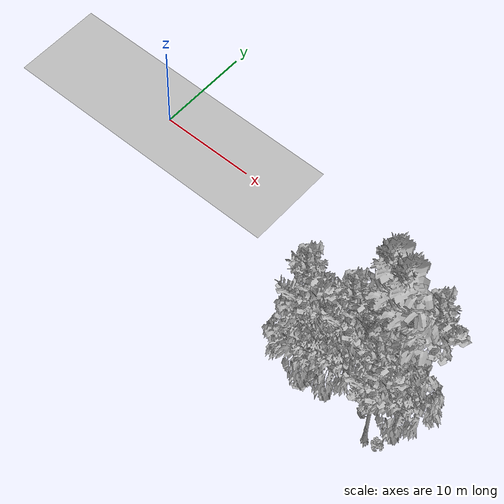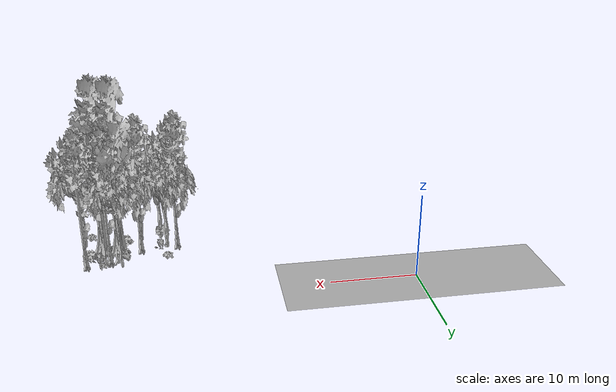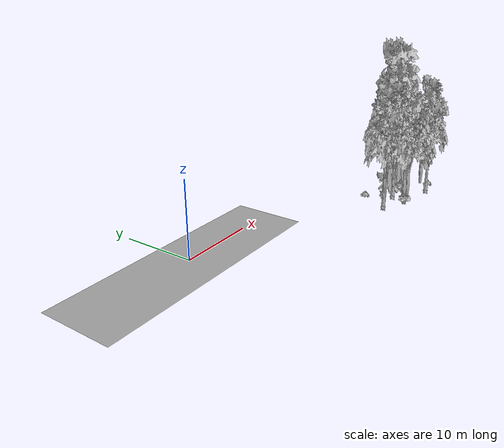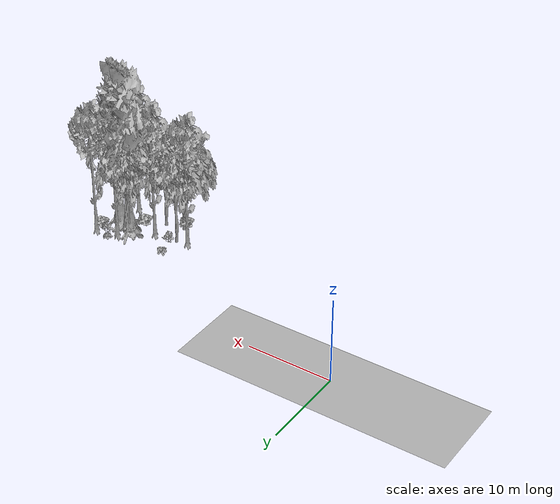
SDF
<sdf version="1.7">
 <world name="default">
  <model name="ground_plane">
   <static>1</static>
   <link name="link">
    <collision name="collision">
     <geometry><plane><normal>0 0 1</normal><size>100 100</size></plane></geometry>
     <surface><contact><ode><min_depth>0.01</min_depth><max_vel>0</max_vel></ode></contact></surface>
    </collision>
    <visual name="grass">
     <cast_shadows>0</cast_shadows>
     <geometry>
      <mesh>
       <scale>0.5814285714285714 0.18142857142857144 0.1</scale>
       <uri>file://grass_plane/meshes/grass_plane.dae</uri>
      </mesh>
     </geometry>
    </visual>
   </link>
  </model>
  <model name="Tree 49">
   <static>1</static>
   <pose>33.44300823481328 -9.500627244571358 0 1.57079 -0 0</pose>
   <link name="link">
    <collision name="collision">
     <geometry><mesh><scale>3.5 5 3.5</scale><uri>model://tree_2/meshes/tree_2.obj</uri></mesh></geometry>
    </collision>
    <visual name="visual">
     <geometry><mesh><scale>3.5 5 3.5</scale><uri>model://tree_2/meshes/tree_2.obj</uri></mesh></geometry>
    </visual>
   </link>
  </model>
  <model name="Tree 52">
   <static>1</static>
   <pose>28.01484143926163 -11.492678406314141 0 1.57079 -0 0</pose>
   <link name="link">
    <collision name="collision">
     <geometry><mesh><scale>3.5 5 3.5</scale><uri>model://tree_2/meshes/tree_2.obj</uri></mesh></geometry>
    </collision>
    <visual name="visual">
     <geometry><mesh><scale>3.5 5 3.5</scale><uri>model://tree_2/meshes/tree_2.obj</uri></mesh></geometry>
    </visual>
   </link>
  </model>
  <model name="Tree 121">
   <static>1</static>
   <pose>33.54353267230708 -9.74247264638067 0 1.57079 -0 0</pose>
   <link name="link">
    <collision name="collision">
     <geometry><mesh><scale>3.5 5 3.5</scale><uri>model://tree_4/meshes/tree_4.obj</uri></mesh></geometry>
    </collision>
    <visual name="visual">
     <geometry><mesh><scale>3.5 5 3.5</scale><uri>model://tree_4/meshes/tree_4.obj</uri></mesh></geometry>
    </visual>
   </link>
  </model>
  <model name="Tree 154">
   <static>1</static>
   <pose>34.7339557698474 -8.773467073257487 0 1.57079 -0 0</pose>
   <link name="link">
    <collision name="collision">
     <geometry><mesh><scale>3.5 5 3.5</scale><uri>model://tree_9/meshes/tree_9.obj</uri></mesh></geometry>
    </collision>
    <visual name="visual">
     <geometry><mesh><scale>3.5 5 3.5</scale><uri>model://tree_9/meshes/tree_9.obj</uri></mesh></geometry>
    </visual>
   </link>
  </model>
  <model name="Tree 222">
   <static>1</static>
   <pose>36.14679054850107 -14.603525658572384 0 1.57079 -0 0</pose>
   <link name="link">
    <collision name="collision">
     <geometry><mesh><scale>3.5 5 3.5</scale><uri>model://tree_9/meshes/tree_9.obj</uri></mesh></geometry>
    </collision>
    <visual name="visual">
     <geometry><mesh><scale>3.5 5 3.5</scale><uri>model://tree_9/meshes/tree_9.obj</uri></mesh></geometry>
    </visual>
   </link>
  </model>
  <model name="Tree 291">
   <static>1</static>
   <pose>31.239416366705143 -11.38739483646315 0 1.57079 -0 0</pose>
   <link name="link">
    <collision name="collision">
     <geometry><mesh><scale>3.5 5 3.5</scale><uri>model://tree_9/meshes/tree_9.obj</uri></mesh></geometry>
    </collision>
    <visual name="visual">
     <geometry><mesh><scale>3.5 5 3.5</scale><uri>model://tree_9/meshes/tree_9.obj</uri></mesh></geometry>
    </visual>
   </link>
  </model>
  <model name="Tree 304">
   <static>1</static>
   <pose>31.150174864312433 -13.627686870271742 0 1.57079 -0 0</pose>
   <link name="link">
    <collision name="collision">
     <geometry><mesh><scale>3.5 5 3.5</scale><uri>model://tree_2/meshes/tree_2.obj</uri></mesh></geometry>
    </collision>
    <visual name="visual">
     <geometry><mesh><scale>3.5 5 3.5</scale><uri>model://tree_2/meshes/tree_2.obj</uri></mesh></geometry>
    </visual>
   </link>
  </model>
  <model name="Tree 308">
   <static>1</static>
   <pose>37.46984126785338 -8.265661914326618 0 1.57079 -0 0</pose>
   <link name="link">
    <collision name="collision">
     <geometry><mesh><scale>3.5 5 3.5</scale><uri>model://tree_9/meshes/tree_9.obj</uri></mesh></geometry>
    </collision>
    <visual name="visual">
     <geometry><mesh><scale>3.5 5 3.5</scale><uri>model://tree_9/meshes/tree_9.obj</uri></mesh></geometry>
    </visual>
   </link>
  </model>
  <model name="Tree 316">
   <static>1</static>
   <pose>35.45920918032074 -10.418701770232861 0 1.57079 -0 0</pose>
   <link name="link">
    <collision name="collision">
     <geometry><mesh><scale>3.5 5 3.5</scale><uri>model://tree_4/meshes/tree_4.obj</uri></mesh></geometry>
    </collision>
    <visual name="visual">
     <geometry><mesh><scale>3.5 5 3.5</scale><uri>model://tree_4/meshes/tree_4.obj</uri></mesh></geometry>
    </visual>
   </link>
  </model>
  <model name="Tree 331">
   <static>1</static>
   <pose>37.86193998172811 -13.014566472799341 0 1.57079 -0 0</pose>
   <link name="link">
    <collision name="collision">
     <geometry><mesh><scale>3.5 5 3.5</scale><uri>model://tree_2/meshes/tree_2.obj</uri></mesh></geometry>
    </collision>
    <visual name="visual">
     <geometry><mesh><scale>3.5 5 3.5</scale><uri>model://tree_2/meshes/tree_2.obj</uri></mesh></geometry>
    </visual>
   </link>
  </model>
  <model name="Tree 443">
   <static>1</static>
   <pose>26.88447209533099 -11.897517149359947 0 1.57079 -0 0</pose>
   <link name="link">
    <collision name="collision">
     <geometry><mesh><scale>3.5 5 3.5</scale><uri>model://tree_9/meshes/tree_9.obj</uri></mesh></geometry>
    </collision>
    <visual name="visual">
     <geometry><mesh><scale>3.5 5 3.5</scale><uri>model://tree_9/meshes/tree_9.obj</uri></mesh></geometry>
    </visual>
   </link>
  </model>
  <model name="Tree 449">
   <static>1</static>
   <pose>28.815141744982128 -14.041929002978321 0 1.57079 -0 0</pose>
   <link name="link">
    <collision name="collision">
     <geometry><mesh><scale>3.5 5 3.5</scale><uri>model://tree_2/meshes/tree_2.obj</uri></mesh></geometry>
    </collision>
    <visual name="visual">
     <geometry><mesh><scale>3.5 5 3.5</scale><uri>model://tree_2/meshes/tree_2.obj</uri></mesh></geometry>
    </visual>
   </link>
  </model>
  <model name="Bush 36">
   <static>1</static>
   <pose>37.01194371645563 -8.880592773637712 0 1.57079 -0 0</pose>
   <link name="link">
    <collision name="collision">
     <geometry><mesh><scale>2 2 2</scale><uri>model://bush_1/meshes/bush_1.obj</uri></mesh></geometry>
     <surface><contact><collide_without_contact>false</collide_without_contact></contact></surface>
    </collision>
    <visual name="visual">
     <geometry><mesh><scale>2 2 2</scale><uri>model://bush_1/meshes/bush_1.obj</uri></mesh></geometry>
    </visual>
   </link>
  </model>
  <model name="Bush 61">
   <static>1</static>
   <pose>28.060554077151252 -8.44310425726506 0 1.57079 -0 0</pose>
   <link name="link">
    <collision name="collision">
     <geometry><mesh><scale>2 2 2</scale><uri>model://bush_3/meshes/bush_3.obj</uri></mesh></geometry>
     <surface><contact><collide_without_contact>false</collide_without_contact></contact></surface>
    </collision>
    <visual name="visual">
     <geometry><mesh><scale>2 2 2</scale><uri>model://bush_3/meshes/bush_3.obj</uri></mesh></geometry>
    </visual>
   </link>
  </model>
  <model name="Bush 115">
   <static>1</static>
   <pose>35.993275368631345 -8.591051388665063 0 1.57079 -0 0</pose>
   <link name="link">
    <collision name="collision">
     <geometry><mesh><scale>2 2 2</scale><uri>model://bush_4/meshes/bush_4.obj</uri></mesh></geometry>
     <surface><contact><collide_without_contact>false</collide_without_contact></contact></surface>
    </collision>
    <visual name="visual">
     <geometry><mesh><scale>2 2 2</scale><uri>model://bush_4/meshes/bush_4.obj</uri></mesh></geometry>
    </visual>
   </link>
  </model>
  <model name="Bush 165">
   <static>1</static>
   <pose>34.45036655638222 -11.97682538208261 0 1.57079 -0 0</pose>
   <link name="link">
    <collision name="collision">
     <geometry><mesh><scale>2 2 2</scale><uri>model://bush_2/meshes/bush_2.obj</uri></mesh></geometry>
     <surface><contact><collide_without_contact>false</collide_without_contact></contact></surface>
    </collision>
    <visual name="visual">
     <geometry><mesh><scale>2 2 2</scale><uri>model://bush_2/meshes/bush_2.obj</uri></mesh></geometry>
    </visual>
   </link>
  </model>
  <model name="Bush 201">
   <static>1</static>
   <pose>28.806505026976254 -10.91462805446821 0 1.57079 -0 0</pose>
   <link name="link">
    <collision name="collision">
     <geometry><mesh><scale>2 2 2</scale><uri>model://bush_4/meshes/bush_4.obj</uri></mesh></geometry>
     <surface><contact><collide_without_contact>false</collide_without_contact></contact></surface>
    </collision>
    <visual name="visual">
     <geometry><mesh><scale>2 2 2</scale><uri>model://bush_4/meshes/bush_4.obj</uri></mesh></geometry>
    </visual>
   </link>
  </model>
  <model name="Bush 253">
   <static>1</static>
   <pose>33.41306639053039 -9.37563423428182 0 1.57079 -0 0</pose>
   <link name="link">
    <collision name="collision">
     <geometry><mesh><scale>2 2 2</scale><uri>model://bush_0/meshes/bush_0.obj</uri></mesh></geometry>
     <surface><contact><collide_without_contact>false</collide_without_contact></contact></surface>
    </collision>
    <visual name="visual">
     <geometry><mesh><scale>2 2 2</scale><uri>model://bush_0/meshes/bush_0.obj</uri></mesh></geometry>
    </visual>
   </link>
  </model>
  <model name="Bush 260">
   <static>1</static>
   <pose>33.056963113182775 -12.088669844104839 0 1.57079 -0 0</pose>
   <link name="link">
    <collision name="collision">
     <geometry><mesh><scale>2 2 2</scale><uri>model://bush_1/meshes/bush_1.obj</uri></mesh></geometry>
     <surface><contact><collide_without_contact>false</collide_without_contact></contact></surface>
    </collision>
    <visual name="visual">
     <geometry><mesh><scale>2 2 2</scale><uri>model://bush_1/meshes/bush_1.obj</uri></mesh></geometry>
    </visual>
   </link>
  </model>
  <model name="Bush 277">
   <static>1</static>
   <pose>28.69445170020981 -14.40641643119245 0 1.57079 -0 0</pose>
   <link name="link">
    <collision name="collision">
     <geometry><mesh><scale>2 2 2</scale><uri>model://bush_1/meshes/bush_1.obj</uri></mesh></geometry>
     <surface><contact><collide_without_contact>false</collide_without_contact></contact></surface>
    </collision>
    <visual name="visual">
     <geometry><mesh><scale>2 2 2</scale><uri>model://bush_1/meshes/bush_1.obj</uri></mesh></geometry>
    </visual>
   </link>
  </model>
  <model name="Bush 281">
   <static>1</static>
   <pose>35.41740202391577 -7.8294227872568944 0 1.57079 -0 0</pose>
   <link name="link">
    <collision name="collision">
     <geometry><mesh><scale>2 2 2</scale><uri>model://bush_2/meshes/bush_2.obj</uri></mesh></geometry>
     <surface><contact><collide_without_contact>false</collide_without_contact></contact></surface>
    </collision>
    <visual name="visual">
     <geometry><mesh><scale>2 2 2</scale><uri>model://bush_2/meshes/bush_2.obj</uri></mesh></geometry>
    </visual>
   </link>
  </model>
  <model name="Bush 285">
   <static>1</static>
   <pose>37.40312158918633 -14.379009098850378 0 1.57079 -0 0</pose>
   <link name="link">
    <collision name="collision">
     <geometry><mesh><scale>2 2 2</scale><uri>model://bush_3/meshes/bush_3.obj</uri></mesh></geometry>
     <surface><contact><collide_without_contact>false</collide_without_contact></contact></surface>
    </collision>
    <visual name="visual">
     <geometry><mesh><scale>2 2 2</scale><uri>model://bush_3/meshes/bush_3.obj</uri></mesh></geometry>
    </visual>
   </link>
  </model>
 </world>
</sdf>
